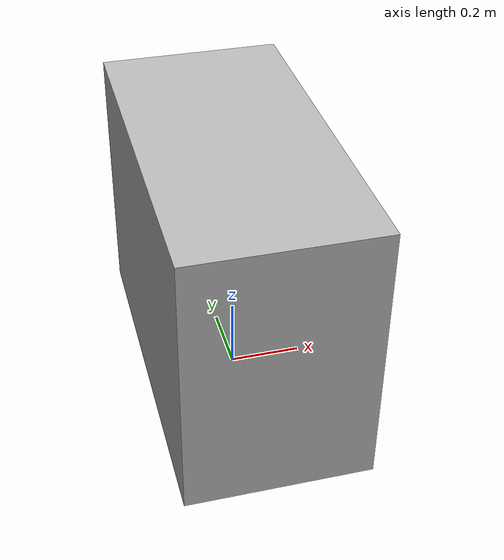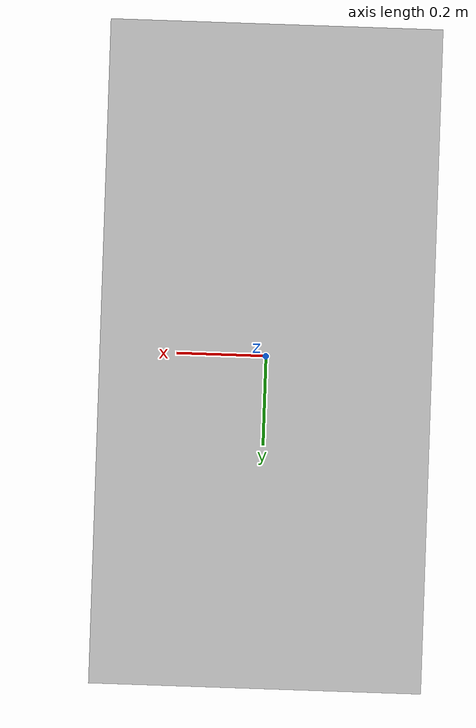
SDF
<?xml version="1.0"?>
<sdf version="1.6">
  <model name="rwc2019/sink">
    <link name="1_link">
      <collision name="1_col">
        <geometry>
          <box>
            <size>0.505 1.01 0.75</size>
          </box>
        </geometry>
      </collision>
      <visual name="1_vis">
        <geometry>
          <box>
            <size>0.505 1.01 0.75</size>
          </box>
        </geometry>
      </visual>
      <pose>0.0 0.0 0.375 0 0 0</pose>
    </link>
    <link name="on_top_of">
      <virtual_volume name="on_top_of_vv">
        <geometry>
          <box>
            <size>0.46 0.95 0.25</size>
          </box>
        </geometry>
        <pose>0.025 0.0 0.895 0 0 0</pose>
      </virtual_volume>
    </link>
    <link name="in_front_of">
      <virtual_volume name="in_front_of_vv">
        <geometry>
          <box>
            <size>0.2 0.5 0.01</size>
          </box>
        </geometry>
        <pose>0.7525 0.0 0.005 0 0 0</pose>
      </virtual_volume>
    </link>
    <static>true</static>
  </model>
</sdf>
